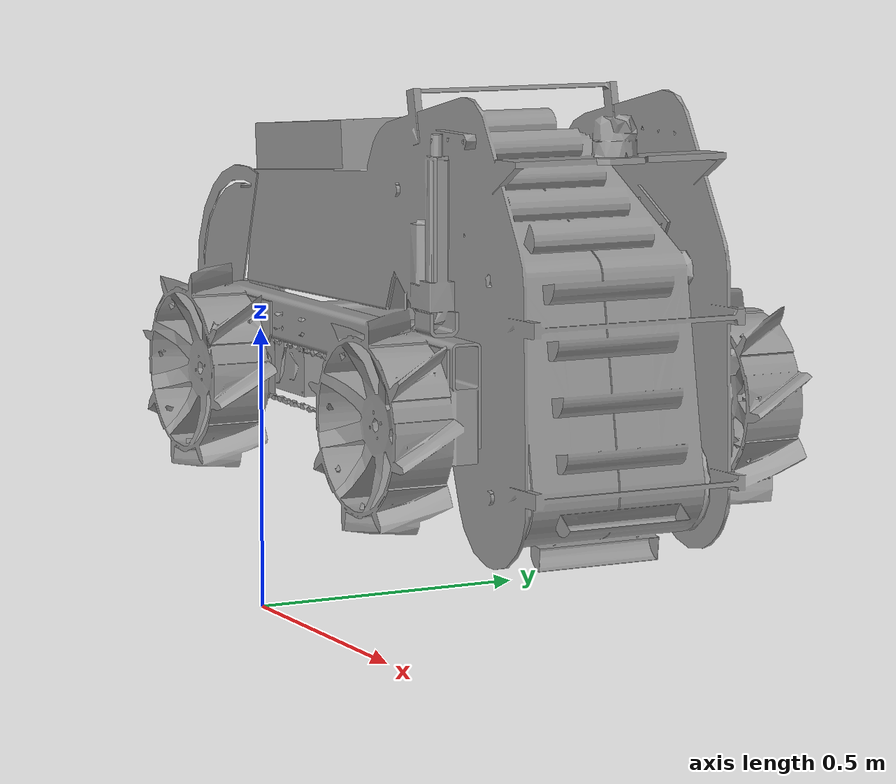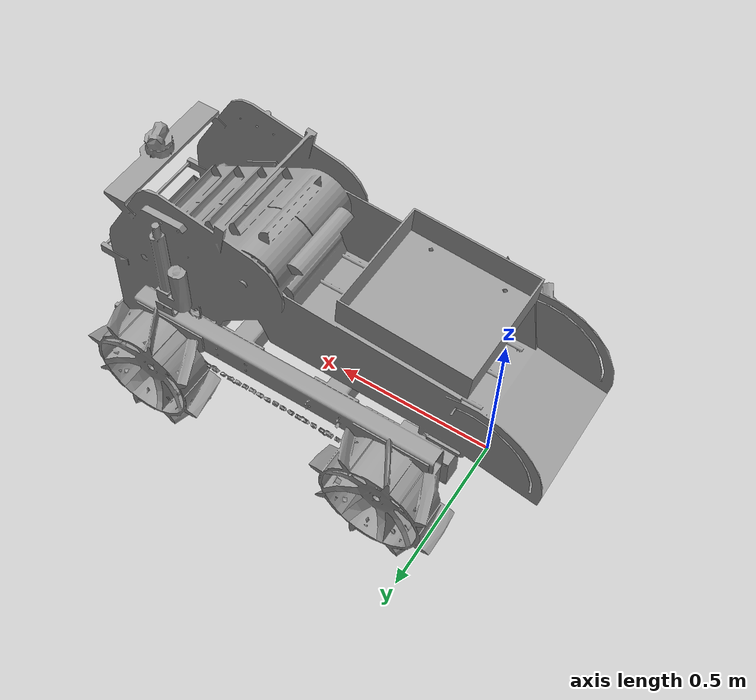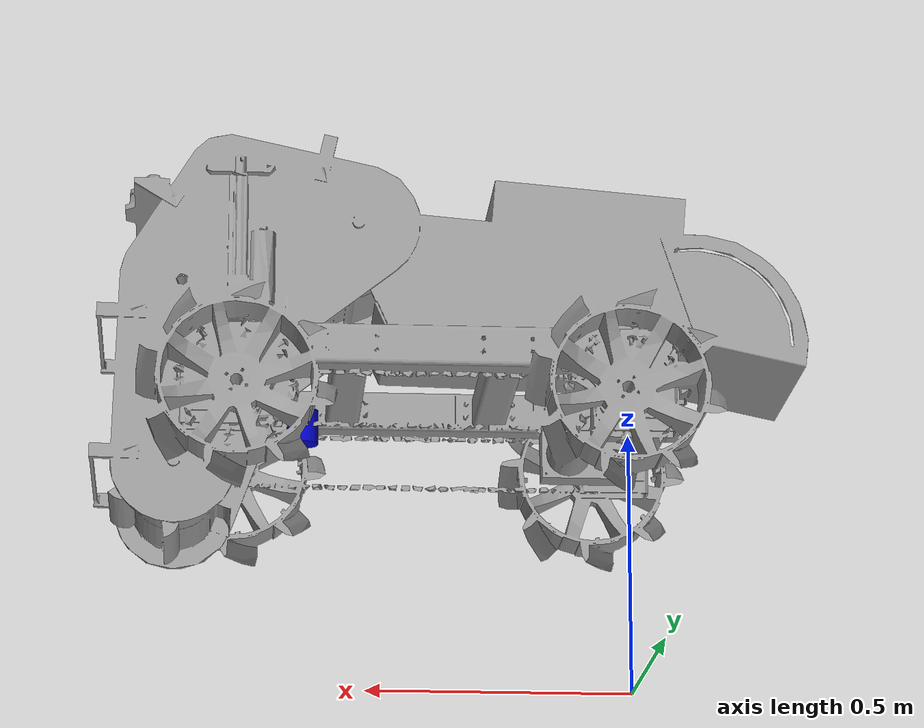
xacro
<?xml version="1.0"?>
<robot xmlns:xacro="http://www.ros.org/wiki/xacro" name="lunabot">

  <!-- Real rover dimensions (from STL bounding box, mm → m)              -->
  <!--   Length (X): 1.296 m   Width (Y): 0.733 m   Height (Z): 0.743 m  -->
  <!-- Mesh is centered at origin by decimation script.                    -->
  <!-- base_link sits at mesh_half_height above ground so mesh bottom      -->
  <!-- aligns with Z=0 (ground plane).                                     -->
  <!-- NOTE: if the robot appears rotated in Gazebo, adjust mesh_rpy.      -->
  <xacro:property name="mesh_half_height" value="0.372"/>
  <xacro:property name="mesh_rpy"         value="0 0 0"/>

  <xacro:property name="wheel_radius"     value="0.15"/>
  <xacro:property name="wheel_width"      value="0.10"/>
  <xacro:property name="wheel_separation" value="0.65"/>
  <xacro:property name="wheelbase"        value="0.80"/>

  <!-- wheel center Z in base_link frame = wheel_radius - mesh_half_height -->
  <xacro:property name="wheel_z" value="${wheel_radius - mesh_half_height}"/>

  <!-- Footprint (navigation origin, on ground)                           -->
  <link name="base_footprint"/>

  <joint name="base_footprint_joint" type="fixed">
    <parent link="base_footprint"/>
    <child link="base_link"/>
    <origin xyz="0 0 ${mesh_half_height}" rpy="0 0 0"/>
  </joint>

  <!-- Base Link — full rover mesh                                         -->
  <!-- Visual : decimated rover mesh (30k triangles)                       -->
  <!-- Collision: simple box raised above wheel contact to avoid conflict  -->
  <link name="base_link">
    <visual>
      <origin xyz="0 0 0" rpy="${mesh_rpy}"/>
      <geometry>
        <mesh filename="package://lunabotics_description/meshes/rover_visual.stl"/>
      </geometry>
    </visual>
    <collision>
      <!-- Raised box covers body only; wheels handle ground contact -->
      <origin xyz="0 0 0.10" rpy="0 0 0"/>
      <geometry>
        <box size="1.10 0.60 0.40"/>
      </geometry>
    </collision>
    <inertial>
      <mass value="50.0"/>
      <!-- Inertia for 50 kg box 1.296×0.733×0.743 m -->
      <inertia ixx="3.50" ixy="0.0" ixz="0.0"
               iyy="7.25" iyz="0.0"
               izz="9.25"/>
    </inertial>
  </link>

  <!-- Wheels — 4 hub-motor driven wheels (skid-steer)                    -->
  <!-- Each wheel has a BLDC hub motor (BLD-510B driver).                 -->
  <!-- Visual is baked into rover mesh; these are physics-only.           -->
  <xacro:macro name="wheel" params="prefix x_offset y_reflect">
    <link name="${prefix}_wheel">
      <collision>
        <geometry>
          <cylinder radius="${wheel_radius}" length="${wheel_width}"/>
        </geometry>
      </collision>
      <inertial>
        <mass value="4.0"/>
        <inertia ixx="0.04" ixy="0.0" ixz="0.0"
                 iyy="0.04" iyz="0.0"
                 izz="0.07"/>
      </inertial>
    </link>

    <joint name="${prefix}_wheel_joint" type="continuous">
      <parent link="base_link"/>
      <child link="${prefix}_wheel"/>
      <origin xyz="${x_offset} ${y_reflect * wheel_separation/2} ${wheel_z}" rpy="${-pi/2} 0 0"/>
      <axis xyz="0 0 1"/>
    </joint>
  </xacro:macro>

  <xacro:wheel prefix="front_left"  x_offset="${wheelbase/2}"  y_reflect="1"/>
  <xacro:wheel prefix="front_right" x_offset="${wheelbase/2}"  y_reflect="-1"/>
  <xacro:wheel prefix="rear_left"   x_offset="${-wheelbase/2}" y_reflect="1"/>
  <xacro:wheel prefix="rear_right"  x_offset="${-wheelbase/2}" y_reflect="-1"/>

  <!-- Unitree L2 LiDAR — PERMANENT MOUNT: front-center on extension    -->
  <!-- Extension plate rises from both sides of drivetrain front,       -->
  <!-- extends forward, LiDAR rests on top.                              -->
  <!-- Measured: bottom 47cm, top 54cm above ground → center 50.5cm     -->
  <!-- base_link is at mesh_half_height (0.372m) above ground            -->
  <!-- LiDAR Z in base_link frame: 0.505 - 0.372 = +0.133m              -->
  <!-- LiDAR X: 62cm forward of center = +0.62m                         -->
  <!--   (front of LiDAR 21cm ahead of drivetrain chassis front)        -->
  <!-- LiDAR Y: centered on chassis = 0.0m                              -->
  <link name="unilidar_lidar">
    <visual>
      <geometry>
        <cylinder radius="0.03" length="0.065"/>
      </geometry>
      <material name="blue">
        <color rgba="0.0 0.0 0.8 1.0"/>
      </material>
    </visual>
    <collision>
      <geometry>
        <cylinder radius="0.03" length="0.065"/>
      </geometry>
    </collision>
    <inertial>
      <mass value="0.5"/>
      <inertia ixx="0.001" ixy="0.0" ixz="0.0"
               iyy="0.001" iyz="0.0"
               izz="0.001"/>
    </inertial>
  </link>

  <joint name="unilidar_lidar_joint" type="fixed">
    <parent link="base_link"/>
    <child link="unilidar_lidar"/>
    <origin xyz="0.62 0.0 0.133" rpy="0 0 0"/>
  </joint>

  <!-- Unitree L2 built-in IMU (same physical unit as LiDAR) -->
  <link name="unilidar_imu">
    <inertial>
      <mass value="0.01"/>
      <inertia ixx="0.0001" ixy="0.0" ixz="0.0"
               iyy="0.0001" iyz="0.0"
               izz="0.0001"/>
    </inertial>
  </link>

  <joint name="unilidar_imu_joint" type="fixed">
    <parent link="unilidar_lidar"/>
    <child link="unilidar_imu"/>
    <origin xyz="0 0 0" rpy="0 0 0"/>
  </joint>

  <!-- Include Gazebo plugins / sensors -->
  <xacro:include filename="$(find lunabotics_description)/urdf/lunabot_gazebo.xacro"/>

</robot>
